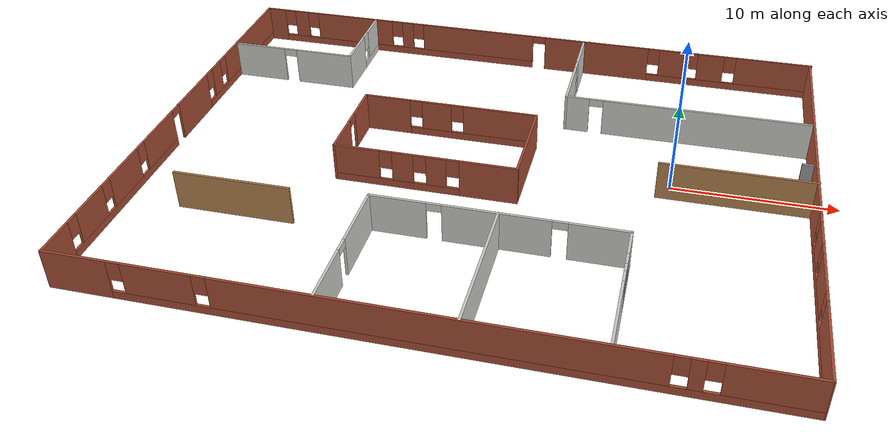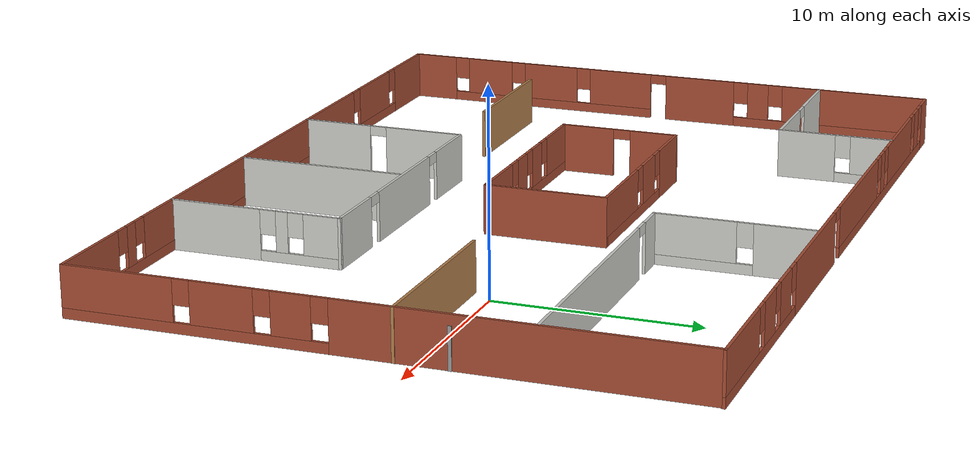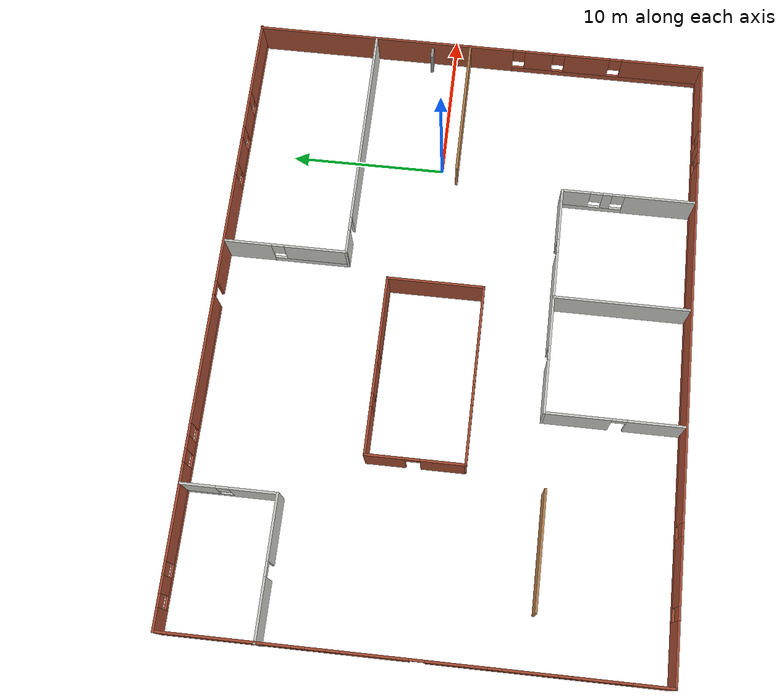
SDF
<sdf version="1.6">
 <model name="Office2">
  <pose>-11.6266 -1.74216 0 0 -0 0</pose>
  <link name="Door_3">
   <collision name="Door_3_Collision">
    <geometry><box><size>0.9 0.17 2</size></box></geometry>
    <pose>0 0 1 0 -0 0</pose>
   </collision>
   <visual name="Door_3_Visual">
    <pose>0 0 1 0 -0 0</pose>
    <geometry><box><size>0.9 0.17 2</size></box></geometry>
    <material>
     <script><uri>file://media/materials/scripts/gazebo.material</uri><name>Gazebo/Grey</name></script>
    </material>
   </visual>
   <pose>19.6108 3.24042 0 0 -0 0</pose>
  </link>
  <link name="Wall_0">
   <pose>-19.9784 0.000161 0 0 -0 1.5708</pose>
   <visual name="Wall_0_Visual_0">
    <pose>-13.757 0 1.25 0 -0 0</pose>
    <geometry><box><size>2.48598 0.15 2.5</size></box></geometry>
    <material>
     <script><uri>file://media/materials/scripts/gazebo.material</uri><name>Gazebo/Bricks</name></script>
     <ambient>1 1 1 1</ambient>
    </material>
    <meta><layer>0</layer></meta>
   </visual>
   <collision name="Wall_0_Collision_0">
    <geometry><box><size>2.48598 0.15 2.5</size></box></geometry>
    <pose>-13.757 0 1.25 0 -0 0</pose>
   </collision>
   <visual name="Wall_0_Visual_1">
    <pose>2.2039 0 1.25 0 -0 0</pose>
    <geometry><box><size>3.96148 0.15 2.5</size></box></geometry>
    <material>
     <script><uri>file://media/materials/scripts/gazebo.material</uri><name>Gazebo/Bricks</name></script>
     <ambient>1 1 1 1</ambient>
    </material>
    <meta><layer>0</layer></meta>
   </visual>
   <collision name="Wall_0_Collision_1">
    <geometry><box><size>3.96148 0.15 2.5</size></box></geometry>
    <pose>2.2039 0 1.25 0 -0 0</pose>
   </collision>
   <visual name="Wall_0_Visual_2">
    <pose>-6.59543 0 0.25 0 -0 0</pose>
    <geometry><box><size>11.8372 0.15 0.5</size></box></geometry>
    <material>
     <script><uri>file://media/materials/scripts/gazebo.material</uri><name>Gazebo/Bricks</name></script>
     <ambient>1 1 1 1</ambient>
    </material>
    <meta><layer>0</layer></meta>
   </visual>
   <collision name="Wall_0_Collision_2">
    <geometry><box><size>11.8372 0.15 0.5</size></box></geometry>
    <pose>-6.59543 0 0.25 0 -0 0</pose>
   </collision>
   <visual name="Wall_0_Visual_3">
    <pose>9.59232 0 0.25 0 -0 0</pose>
    <geometry><box><size>10.8154 0.15 0.5</size></box></geometry>
    <material>
     <script><uri>file://media/materials/scripts/gazebo.material</uri><name>Gazebo/Bricks</name></script>
     <ambient>1 1 1 1</ambient>
    </material>
    <meta><layer>0</layer></meta>
   </visual>
   <collision name="Wall_0_Collision_3">
    <geometry><box><size>10.8154 0.15 0.5</size></box></geometry>
    <pose>9.59232 0 0.25 0 -0 0</pose>
   </collision>
   <visual name="Wall_0_Visual_4">
    <pose>-10.3805 0 1.5 0 -0 0</pose>
    <geometry><box><size>2.6671 0.15 2</size></box></geometry>
    <material>
     <script><uri>file://media/materials/scripts/gazebo.material</uri><name>Gazebo/Bricks</name></script>
     <ambient>1 1 1 1</ambient>
    </material>
    <meta><layer>0</layer></meta>
   </visual>
   <collision name="Wall_0_Collision_4">
    <geometry><box><size>2.6671 0.15 2</size></box></geometry>
    <pose>-10.3805 0 1.5 0 -0 0</pose>
   </collision>
   <visual name="Wall_0_Visual_5">
    <pose>-6.66573 0 1.5 0 -0 0</pose>
    <geometry><box><size>3.1624 0.15 2</size></box></geometry>
    <material>
     <script><uri>file://media/materials/scripts/gazebo.material</uri><name>Gazebo/Bricks</name></script>
     <ambient>1 1 1 1</ambient>
    </material>
    <meta><layer>0</layer></meta>
   </visual>
   <collision name="Wall_0_Collision_5">
    <geometry><box><size>3.1624 0.15 2</size></box></geometry>
    <pose>-6.66573 0 1.5 0 -0 0</pose>
   </collision>
   <visual name="Wall_0_Visual_6">
    <pose>-2.48068 0 1.5 0 -0 0</pose>
    <geometry><box><size>3.6077 0.15 2</size></box></geometry>
    <material>
     <script><uri>file://media/materials/scripts/gazebo.material</uri><name>Gazebo/Bricks</name></script>
     <ambient>1 1 1 1</ambient>
    </material>
    <meta><layer>0</layer></meta>
   </visual>
   <collision name="Wall_0_Collision_6">
    <geometry><box><size>3.6077 0.15 2</size></box></geometry>
    <pose>-2.48068 0 1.5 0 -0 0</pose>
   </collision>
   <visual name="Wall_0_Visual_7">
    <pose>-2.48068 0 1.5 0 -0 0</pose>
    <geometry><box><size>3.6077 0.15 2</size></box></geometry>
    <material>
     <script><uri>file://media/materials/scripts/gazebo.material</uri><name>Gazebo/Bricks</name></script>
     <ambient>1 1 1 1</ambient>
    </material>
    <meta><layer>0</layer></meta>
   </visual>
   <collision name="Wall_0_Collision_7">
    <geometry><box><size>3.6077 0.15 2</size></box></geometry>
    <pose>-2.48068 0 1.5 0 -0 0</pose>
   </collision>
   <visual name="Wall_0_Visual_8">
    <pose>5.57524 0 1.5 0 -0 0</pose>
    <geometry><box><size>1.1812 0.15 2</size></box></geometry>
    <material>
     <script><uri>file://media/materials/scripts/gazebo.material</uri><name>Gazebo/Bricks</name></script>
     <ambient>1 1 1 1</ambient>
    </material>
    <meta><layer>0</layer></meta>
   </visual>
   <collision name="Wall_0_Collision_8">
    <geometry><box><size>1.1812 0.15 2</size></box></geometry>
    <pose>5.57524 0 1.5 0 -0 0</pose>
   </collision>
   <visual name="Wall_0_Visual_9">
    <pose>10.9829 0 1.5 0 -0 0</pose>
    <geometry><box><size>8.03416 0.15 2</size></box></geometry>
    <material>
     <script><uri>file://media/materials/scripts/gazebo.material</uri><name>Gazebo/Bricks</name></script>
     <ambient>1 1 1 1</ambient>
    </material>
    <meta><layer>0</layer></meta>
   </visual>
   <collision name="Wall_0_Collision_9">
    <geometry><box><size>8.03416 0.15 2</size></box></geometry>
    <pose>10.9829 0 1.5 0 -0 0</pose>
   </collision>
   <visual name="Wall_0_Visual_10">
    <pose>-12.114 0 1.9 0 -0 0</pose>
    <geometry><box><size>0.8 0.15 1.2</size></box></geometry>
    <material>
     <script><uri>file://media/materials/scripts/gazebo.material</uri><name>Gazebo/Bricks</name></script>
     <ambient>1 1 1 1</ambient>
    </material>
    <meta><layer>0</layer></meta>
   </visual>
   <collision name="Wall_0_Collision_10">
    <geometry><box><size>0.8 0.15 1.2</size></box></geometry>
    <pose>-12.114 0 1.9 0 -0 0</pose>
   </collision>
   <visual name="Wall_0_Visual_11">
    <pose>4.58464 0 1.9 0 -0 0</pose>
    <geometry><box><size>0.8 0.15 1.2</size></box></geometry>
    <material>
     <script><uri>file://media/materials/scripts/gazebo.material</uri><name>Gazebo/Bricks</name></script>
     <ambient>1 1 1 1</ambient>
    </material>
    <meta><layer>0</layer></meta>
   </visual>
   <collision name="Wall_0_Collision_11">
    <geometry><box><size>0.8 0.15 1.2</size></box></geometry>
    <pose>4.58464 0 1.9 0 -0 0</pose>
   </collision>
   <visual name="Wall_0_Visual_12">
    <pose>-8.64693 0 1.9 0 -0 0</pose>
    <geometry><box><size>0.8 0.15 1.2</size></box></geometry>
    <material>
     <script><uri>file://media/materials/scripts/gazebo.material</uri><name>Gazebo/Bricks</name></script>
     <ambient>1 1 1 1</ambient>
    </material>
    <meta><layer>0</layer></meta>
   </visual>
   <collision name="Wall_0_Collision_12">
    <geometry><box><size>0.8 0.15 1.2</size></box></geometry>
    <pose>-8.64693 0 1.9 0 -0 0</pose>
   </collision>
   <visual name="Wall_0_Visual_13">
    <pose>-4.68453 0 1.9 0 -0 0</pose>
    <geometry><box><size>0.8 0.15 1.2</size></box></geometry>
    <material>
     <script><uri>file://media/materials/scripts/gazebo.material</uri><name>Gazebo/Bricks</name></script>
     <ambient>1 1 1 1</ambient>
    </material>
    <meta><layer>0</layer></meta>
   </visual>
   <collision name="Wall_0_Collision_13">
    <geometry><box><size>0.8 0.15 1.2</size></box></geometry>
    <pose>-4.68453 0 1.9 0 -0 0</pose>
   </collision>
   <visual name="Wall_0_Visual_14">
    <pose>6.56584 0 1.9 0 -0 0</pose>
    <geometry><box><size>0.8 0.15 1.2</size></box></geometry>
    <material>
     <script><uri>file://media/materials/scripts/gazebo.material</uri><name>Gazebo/Bricks</name></script>
     <ambient>1 1 1 1</ambient>
    </material>
    <meta><layer>0</layer></meta>
   </visual>
   <collision name="Wall_0_Collision_14">
    <geometry><box><size>0.8 0.15 1.2</size></box></geometry>
    <pose>6.56584 0 1.9 0 -0 0</pose>
   </collision>
   <visual name="Wall_0_Visual_15">
    <pose>-0.226838 0 2.25 0 -0 0</pose>
    <geometry><box><size>0.9 0.15 0.5</size></box></geometry>
    <material>
     <script><uri>file://media/materials/scripts/gazebo.material</uri><name>Gazebo/Bricks</name></script>
     <ambient>1 1 1 1</ambient>
    </material>
    <meta><layer>0</layer></meta>
   </visual>
   <collision name="Wall_0_Collision_15">
    <geometry><box><size>0.9 0.15 0.5</size></box></geometry>
    <pose>-0.226838 0 2.25 0 -0 0</pose>
   </collision>
   <visual name="Wall_0_Visual_16">
    <pose>-0.226838 0 2.25 0 -0 0</pose>
    <geometry><box><size>0.9 0.15 0.5</size></box></geometry>
    <material>
     <script><uri>file://media/materials/scripts/gazebo.material</uri><name>Gazebo/Bricks</name></script>
     <ambient>1 1 1 1</ambient>
    </material>
    <meta><layer>0</layer></meta>
   </visual>
   <collision name="Wall_0_Collision_16">
    <geometry><box><size>0.9 0.15 0.5</size></box></geometry>
    <pose>-0.226838 0 2.25 0 -0 0</pose>
   </collision>
  </link>
  <link name="Wall_11">
   <pose>-15.7131 9.0425 0 0 -0 0</pose>
   <visual name="Wall_11_Visual_0">
    <pose>-2.47517 0 1.25 0 -0 0</pose>
    <geometry><box><size>3.79967 0.15 2.5</size></box></geometry>
    <material>
     <script><uri>file://media/materials/scripts/gazebo.material</uri><name>Gazebo/CeilingTiled</name></script>
     <ambient>0.203922 0.396078 0.643137 1</ambient>
    </material>
    <meta><layer>0</layer></meta>
   </visual>
   <collision name="Wall_11_Collision_0">
    <geometry><box><size>3.79967 0.15 2.5</size></box></geometry>
    <pose>-2.47517 0 1.25 0 -0 0</pose>
   </collision>
   <visual name="Wall_11_Visual_1">
    <pose>2.34983 0 1.25 0 -0 0</pose>
    <geometry><box><size>4.05033 0.15 2.5</size></box></geometry>
    <material>
     <script><uri>file://media/materials/scripts/gazebo.material</uri><name>Gazebo/CeilingTiled</name></script>
     <ambient>0.203922 0.396078 0.643137 1</ambient>
    </material>
    <meta><layer>0</layer></meta>
   </visual>
   <collision name="Wall_11_Collision_1">
    <geometry><box><size>4.05033 0.15 2.5</size></box></geometry>
    <pose>2.34983 0 1.25 0 -0 0</pose>
   </collision>
   <visual name="Wall_11_Visual_2">
    <pose>-0.125334 0 2.25 0 -0 0</pose>
    <geometry><box><size>0.9 0.15 0.5</size></box></geometry>
    <material>
     <script><uri>file://media/materials/scripts/gazebo.material</uri><name>Gazebo/CeilingTiled</name></script>
     <ambient>0.203922 0.396078 0.643137 1</ambient>
    </material>
    <meta><layer>0</layer></meta>
   </visual>
   <collision name="Wall_11_Collision_2">
    <geometry><box><size>0.9 0.15 0.5</size></box></geometry>
    <pose>-0.125334 0 2.25 0 -0 0</pose>
   </collision>
  </link>
  <link name="Wall_15">
   <pose>-11.4131 11.9675 0 0 -0 1.5708</pose>
   <visual name="Wall_15_Visual_0">
    <pose>-1.49971 0 1.25 0 -0 0</pose>
    <geometry><box><size>3.00058 0.15 2.5</size></box></geometry>
    <material>
     <script><uri>file://media/materials/scripts/gazebo.material</uri><name>Gazebo/CeilingTiled</name></script>
     <ambient>1 1 1 1</ambient>
    </material>
    <meta><layer>0</layer></meta>
   </visual>
   <collision name="Wall_15_Collision_0">
    <geometry><box><size>3.00058 0.15 2.5</size></box></geometry>
    <pose>-1.49971 0 1.25 0 -0 0</pose>
   </collision>
   <visual name="Wall_15_Visual_1">
    <pose>1.50029 0 0.25 0 -0 0</pose>
    <geometry><box><size>2.99942 0.15 0.5</size></box></geometry>
    <material>
     <script><uri>file://media/materials/scripts/gazebo.material</uri><name>Gazebo/CeilingTiled</name></script>
     <ambient>1 1 1 1</ambient>
    </material>
    <meta><layer>0</layer></meta>
   </visual>
   <collision name="Wall_15_Collision_1">
    <geometry><box><size>2.99942 0.15 0.5</size></box></geometry>
    <pose>1.50029 0 0.25 0 -0 0</pose>
   </collision>
   <visual name="Wall_15_Visual_2">
    <pose>1.90029 0 1.5 0 -0 0</pose>
    <geometry><box><size>2.19942 0.15 2</size></box></geometry>
    <material>
     <script><uri>file://media/materials/scripts/gazebo.material</uri><name>Gazebo/CeilingTiled</name></script>
     <ambient>1 1 1 1</ambient>
    </material>
    <meta><layer>0</layer></meta>
   </visual>
   <collision name="Wall_15_Collision_2">
    <geometry><box><size>2.19942 0.15 2</size></box></geometry>
    <pose>1.90029 0 1.5 0 -0 0</pose>
   </collision>
   <visual name="Wall_15_Visual_3">
    <pose>0.400581 0 1.9 0 -0 0</pose>
    <geometry><box><size>0.8 0.15 1.2</size></box></geometry>
    <material>
     <script><uri>file://media/materials/scripts/gazebo.material</uri><name>Gazebo/CeilingTiled</name></script>
     <ambient>1 1 1 1</ambient>
    </material>
    <meta><layer>0</layer></meta>
   </visual>
   <collision name="Wall_15_Collision_3">
    <geometry><box><size>0.8 0.15 1.2</size></box></geometry>
    <pose>0.400581 0 1.9 0 -0 0</pose>
   </collision>
  </link>
  <link name="Wall_17">
   <pose>4.25654 10.9903 0 0 -0 -1.5708</pose>
   <visual name="Wall_17_Visual_0">
    <pose>-2.42895 0 1.25 0 -0 0</pose>
    <geometry><box><size>3.1421 0.15 2.5</size></box></geometry>
    <material>
     <script><uri>file://media/materials/scripts/gazebo.material</uri><name>Gazebo/CeilingTiled</name></script>
     <ambient>1 1 1 1</ambient>
    </material>
    <meta><layer>0</layer></meta>
   </visual>
   <collision name="Wall_17_Collision_0">
    <geometry><box><size>3.1421 0.15 2.5</size></box></geometry>
    <pose>-2.42895 0 1.25 0 -0 0</pose>
   </collision>
   <visual name="Wall_17_Visual_1">
    <pose>1.57105 0 0.25 0 -0 0</pose>
    <geometry><box><size>4.8579 0.15 0.5</size></box></geometry>
    <material>
     <script><uri>file://media/materials/scripts/gazebo.material</uri><name>Gazebo/CeilingTiled</name></script>
     <ambient>1 1 1 1</ambient>
    </material>
    <meta><layer>0</layer></meta>
   </visual>
   <collision name="Wall_17_Collision_1">
    <geometry><box><size>4.8579 0.15 0.5</size></box></geometry>
    <pose>1.57105 0 0.25 0 -0 0</pose>
   </collision>
   <visual name="Wall_17_Visual_2">
    <pose>1.97105 0 1.5 0 -0 0</pose>
    <geometry><box><size>4.0579 0.15 2</size></box></geometry>
    <material>
     <script><uri>file://media/materials/scripts/gazebo.material</uri><name>Gazebo/CeilingTiled</name></script>
     <ambient>1 1 1 1</ambient>
    </material>
    <meta><layer>0</layer></meta>
   </visual>
   <collision name="Wall_17_Collision_2">
    <geometry><box><size>4.0579 0.15 2</size></box></geometry>
    <pose>1.97105 0 1.5 0 -0 0</pose>
   </collision>
   <visual name="Wall_17_Visual_3">
    <pose>-0.457904 0 1.9 0 -0 0</pose>
    <geometry><box><size>0.8 0.15 1.2</size></box></geometry>
    <material>
     <script><uri>file://media/materials/scripts/gazebo.material</uri><name>Gazebo/CeilingTiled</name></script>
     <ambient>1 1 1 1</ambient>
    </material>
    <meta><layer>0</layer></meta>
   </visual>
   <collision name="Wall_17_Collision_3">
    <geometry><box><size>0.8 0.15 1.2</size></box></geometry>
    <pose>-0.457904 0 1.9 0 -0 0</pose>
   </collision>
  </link>
  <link name="Wall_18">
   <pose>12.0565 7.06533 0 0 -0 0</pose>
   <visual name="Wall_18_Visual_0">
    <pose>-7.0719 0 1.25 0 -0 0</pose>
    <geometry><box><size>1.6062 0.15 2.5</size></box></geometry>
    <material>
     <script><uri>file://media/materials/scripts/gazebo.material</uri><name>Gazebo/CeilingTiled</name></script>
     <ambient>0.203922 0.396078 0.643137 1</ambient>
    </material>
    <meta><layer>0</layer></meta>
   </visual>
   <collision name="Wall_18_Collision_0">
    <geometry><box><size>1.6062 0.15 2.5</size></box></geometry>
    <pose>-7.0719 0 1.25 0 -0 0</pose>
   </collision>
   <visual name="Wall_18_Visual_1">
    <pose>1.2531 0 1.25 0 -0 0</pose>
    <geometry><box><size>13.2438 0.15 2.5</size></box></geometry>
    <material>
     <script><uri>file://media/materials/scripts/gazebo.material</uri><name>Gazebo/CeilingTiled</name></script>
     <ambient>0.203922 0.396078 0.643137 1</ambient>
    </material>
    <meta><layer>0</layer></meta>
   </visual>
   <collision name="Wall_18_Collision_1">
    <geometry><box><size>13.2438 0.15 2.5</size></box></geometry>
    <pose>1.2531 0 1.25 0 -0 0</pose>
   </collision>
   <visual name="Wall_18_Visual_2">
    <pose>-5.8188 0 2.25 0 -0 0</pose>
    <geometry><box><size>0.9 0.15 0.5</size></box></geometry>
    <material>
     <script><uri>file://media/materials/scripts/gazebo.material</uri><name>Gazebo/CeilingTiled</name></script>
     <ambient>0.203922 0.396078 0.643137 1</ambient>
    </material>
    <meta><layer>0</layer></meta>
   </visual>
   <collision name="Wall_18_Collision_2">
    <geometry><box><size>0.9 0.15 0.5</size></box></geometry>
    <pose>-5.8188 0 2.25 0 -0 0</pose>
   </collision>
  </link>
  <link name="Wall_20">
   <pose>9.98786 -10.5734 0 0 -0 1.5708</pose>
   <visual name="Wall_20_Visual_0">
    <pose>-2.061 0 1.25 0 -0 0</pose>
    <geometry><box><size>4.62799 0.15 2.5</size></box></geometry>
    <material>
     <script><uri>file://media/materials/scripts/gazebo.material</uri><name>Gazebo/CeilingTiled</name></script>
     <ambient>1 1 1 1</ambient>
    </material>
    <meta><layer>0</layer></meta>
   </visual>
   <collision name="Wall_20_Collision_0">
    <geometry><box><size>4.62799 0.15 2.5</size></box></geometry>
    <pose>-2.061 0 1.25 0 -0 0</pose>
   </collision>
   <visual name="Wall_20_Visual_1">
    <pose>2.314 0 0.25 0 -0 0</pose>
    <geometry><box><size>4.12201 0.15 0.5</size></box></geometry>
    <material>
     <script><uri>file://media/materials/scripts/gazebo.material</uri><name>Gazebo/CeilingTiled</name></script>
     <ambient>1 1 1 1</ambient>
    </material>
    <meta><layer>0</layer></meta>
   </visual>
   <collision name="Wall_20_Collision_1">
    <geometry><box><size>4.12201 0.15 0.5</size></box></geometry>
    <pose>2.314 0 0.25 0 -0 0</pose>
   </collision>
   <visual name="Wall_20_Visual_2">
    <pose>1.36057 0 1.5 0 -0 0</pose>
    <geometry><box><size>0.615141 0.15 2</size></box></geometry>
    <material>
     <script><uri>file://media/materials/scripts/gazebo.material</uri><name>Gazebo/CeilingTiled</name></script>
     <ambient>1 1 1 1</ambient>
    </material>
    <meta><layer>0</layer></meta>
   </visual>
   <collision name="Wall_20_Collision_2">
    <geometry><box><size>0.615141 0.15 2</size></box></geometry>
    <pose>1.36057 0 1.5 0 -0 0</pose>
   </collision>
   <visual name="Wall_20_Visual_3">
    <pose>3.42157 0 1.5 0 -0 0</pose>
    <geometry><box><size>1.90687 0.15 2</size></box></geometry>
    <material>
     <script><uri>file://media/materials/scripts/gazebo.material</uri><name>Gazebo/CeilingTiled</name></script>
     <ambient>1 1 1 1</ambient>
    </material>
    <meta><layer>0</layer></meta>
   </visual>
   <collision name="Wall_20_Collision_3">
    <geometry><box><size>1.90687 0.15 2</size></box></geometry>
    <pose>3.42157 0 1.5 0 -0 0</pose>
   </collision>
   <visual name="Wall_20_Visual_4">
    <pose>0.652994 0 1.9 0 -0 0</pose>
    <geometry><box><size>0.8 0.15 1.2</size></box></geometry>
    <material>
     <script><uri>file://media/materials/scripts/gazebo.material</uri><name>Gazebo/CeilingTiled</name></script>
     <ambient>1 1 1 1</ambient>
    </material>
    <meta><layer>0</layer></meta>
   </visual>
   <collision name="Wall_20_Collision_4">
    <geometry><box><size>0.8 0.15 1.2</size></box></geometry>
    <pose>0.652994 0 1.9 0 -0 0</pose>
   </collision>
   <visual name="Wall_20_Visual_5">
    <pose>2.06813 0 1.9 0 -0 0</pose>
    <geometry><box><size>0.8 0.15 1.2</size></box></geometry>
    <material>
     <script><uri>file://media/materials/scripts/gazebo.material</uri><name>Gazebo/CeilingTiled</name></script>
     <ambient>1 1 1 1</ambient>
    </material>
    <meta><layer>0</layer></meta>
   </visual>
   <collision name="Wall_20_Collision_5">
    <geometry><box><size>0.8 0.15 1.2</size></box></geometry>
    <pose>2.06813 0 1.9 0 -0 0</pose>
   </collision>
  </link>
  <link name="Wall_21">
   <pose>2.56286 -6.27339 0 0 -0 3.14159</pose>
   <visual name="Wall_21_Visual_0">
    <pose>-5.74168 0 1.25 0 -0 0</pose>
    <geometry><box><size>3.51664 0.15 2.5</size></box></geometry>
    <material>
     <script><uri>file://media/materials/scripts/gazebo.material</uri><name>Gazebo/CeilingTiled</name></script>
     <ambient>0.203922 0.396078 0.643137 1</ambient>
    </material>
    <meta><layer>0</layer></meta>
   </visual>
   <collision name="Wall_21_Collision_0">
    <geometry><box><size>3.51664 0.15 2.5</size></box></geometry>
    <pose>-5.74168 0 1.25 0 -0 0</pose>
   </collision>
   <visual name="Wall_21_Visual_1">
    <pose>0.03987 0 1.25 0 -0 0</pose>
    <geometry><box><size>6.24646 0.15 2.5</size></box></geometry>
    <material>
     <script><uri>file://media/materials/scripts/gazebo.material</uri><name>Gazebo/CeilingTiled</name></script>
     <ambient>0.203922 0.396078 0.643137 1</ambient>
    </material>
    <meta><layer>0</layer></meta>
   </visual>
   <collision name="Wall_21_Collision_1">
    <geometry><box><size>6.24646 0.15 2.5</size></box></geometry>
    <pose>0.03987 0 1.25 0 -0 0</pose>
   </collision>
   <visual name="Wall_21_Visual_2">
    <pose>5.78155 0 1.25 0 -0 0</pose>
    <geometry><box><size>3.4369 0.15 2.5</size></box></geometry>
    <material>
     <script><uri>file://media/materials/scripts/gazebo.material</uri><name>Gazebo/CeilingTiled</name></script>
     <ambient>0.203922 0.396078 0.643137 1</ambient>
    </material>
    <meta><layer>0</layer></meta>
   </visual>
   <collision name="Wall_21_Collision_2">
    <geometry><box><size>3.4369 0.15 2.5</size></box></geometry>
    <pose>5.78155 0 1.25 0 -0 0</pose>
   </collision>
   <visual name="Wall_21_Visual_3">
    <pose>-3.53336 0 2.25 0 -0 0</pose>
    <geometry><box><size>0.9 0.15 0.5</size></box></geometry>
    <material>
     <script><uri>file://media/materials/scripts/gazebo.material</uri><name>Gazebo/CeilingTiled</name></script>
     <ambient>0.203922 0.396078 0.643137 1</ambient>
    </material>
    <meta><layer>0</layer></meta>
   </visual>
   <collision name="Wall_21_Collision_3">
    <geometry><box><size>0.9 0.15 0.5</size></box></geometry>
    <pose>-3.53336 0 2.25 0 -0 0</pose>
   </collision>
   <visual name="Wall_21_Visual_4">
    <pose>3.6131 0 2.25 0 -0 0</pose>
    <geometry><box><size>0.9 0.15 0.5</size></box></geometry>
    <material>
     <script><uri>file://media/materials/scripts/gazebo.material</uri><name>Gazebo/CeilingTiled</name></script>
     <ambient>0.203922 0.396078 0.643137 1</ambient>
    </material>
    <meta><layer>0</layer></meta>
   </visual>
   <collision name="Wall_21_Collision_4">
    <geometry><box><size>0.9 0.15 0.5</size></box></geometry>
    <pose>3.6131 0 2.25 0 -0 0</pose>
   </collision>
  </link>
  <link name="Wall_22">
   <pose>-4.86214 -10.5734 0 0 -0 -1.5708</pose>
   <visual name="Wall_22_Visual_0">
    <pose>-2.27908 0 1.25 0 -0 0</pose>
    <geometry><box><size>4.19185 0.15 2.5</size></box></geometry>
    <material>
     <script><uri>file://media/materials/scripts/gazebo.material</uri><name>Gazebo/CeilingTiled</name></script>
     <ambient>1 1 1 1</ambient>
    </material>
    <meta><layer>0</layer></meta>
   </visual>
   <collision name="Wall_22_Collision_0">
    <geometry><box><size>4.19185 0.15 2.5</size></box></geometry>
    <pose>-2.27908 0 1.25 0 -0 0</pose>
   </collision>
   <visual name="Wall_22_Visual_1">
    <pose>2.54592 0 1.25 0 -0 0</pose>
    <geometry><box><size>3.65815 0.15 2.5</size></box></geometry>
    <material>
     <script><uri>file://media/materials/scripts/gazebo.material</uri><name>Gazebo/CeilingTiled</name></script>
     <ambient>1 1 1 1</ambient>
    </material>
    <meta><layer>0</layer></meta>
   </visual>
   <collision name="Wall_22_Collision_1">
    <geometry><box><size>3.65815 0.15 2.5</size></box></geometry>
    <pose>2.54592 0 1.25 0 -0 0</pose>
   </collision>
   <visual name="Wall_22_Visual_2">
    <pose>0.266848 0 2.25 0 -0 0</pose>
    <geometry><box><size>0.9 0.15 0.5</size></box></geometry>
    <material>
     <script><uri>file://media/materials/scripts/gazebo.material</uri><name>Gazebo/CeilingTiled</name></script>
     <ambient>1 1 1 1</ambient>
    </material>
    <meta><layer>0</layer></meta>
   </visual>
   <collision name="Wall_22_Collision_2">
    <geometry><box><size>0.9 0.15 0.5</size></box></geometry>
    <pose>0.266848 0 2.25 0 -0 0</pose>
   </collision>
  </link>
  <link name="Wall_24">
   <collision name="Wall_24_Collision">
    <geometry><box><size>8.75 0.15 2.5</size></box></geometry>
    <pose>0 0 1.25 0 -0 0</pose>
   </collision>
   <visual name="Wall_24_Visual">
    <pose>0 0 1.25 0 -0 0</pose>
    <geometry><box><size>8.75 0.15 2.5</size></box></geometry>
    <material>
     <script><uri>file://media/materials/scripts/gazebo.material</uri><name>Gazebo/CeilingTiled</name></script>
     <ambient>1 1 1 1</ambient>
    </material>
    <meta><layer>0</layer></meta>
   </visual>
   <pose>2.62913 -10.6118 0 0 -0 -1.5708</pose>
  </link>
  <link name="Wall_26">
   <pose>-2.87549 4.23102 0 0 -0 0</pose>
   <visual name="Wall_26_Visual_0">
    <pose>-4.21433 0 1.25 0 -0 0</pose>
    <geometry><box><size>3.07134 0.15 2.5</size></box></geometry>
    <material>
     <script><uri>file://media/materials/scripts/gazebo.material</uri><name>Gazebo/Bricks</name></script>
     <ambient>1 1 1 1</ambient>
    </material>
    <meta><layer>0</layer></meta>
   </visual>
   <collision name="Wall_26_Collision_0">
    <geometry><box><size>3.07134 0.15 2.5</size></box></geometry>
    <pose>-4.21433 0 1.25 0 -0 0</pose>
   </collision>
   <visual name="Wall_26_Visual_1">
    <pose>1.53567 0 0.25 0 -0 0</pose>
    <geometry><box><size>8.42866 0.15 0.5</size></box></geometry>
    <material>
     <script><uri>file://media/materials/scripts/gazebo.material</uri><name>Gazebo/Bricks</name></script>
     <ambient>1 1 1 1</ambient>
    </material>
    <meta><layer>0</layer></meta>
   </visual>
   <collision name="Wall_26_Collision_1">
    <geometry><box><size>8.42866 0.15 0.5</size></box></geometry>
    <pose>1.53567 0 0.25 0 -0 0</pose>
   </collision>
   <visual name="Wall_26_Visual_2">
    <pose>-0.898898 0 1.5 0 -0 0</pose>
    <geometry><box><size>1.95952 0.15 2</size></box></geometry>
    <material>
     <script><uri>file://media/materials/scripts/gazebo.material</uri><name>Gazebo/Bricks</name></script>
     <ambient>1 1 1 1</ambient>
    </material>
    <meta><layer>0</layer></meta>
   </visual>
   <collision name="Wall_26_Collision_2">
    <geometry><box><size>1.95952 0.15 2</size></box></geometry>
    <pose>-0.898898 0 1.5 0 -0 0</pose>
   </collision>
   <visual name="Wall_26_Visual_3">
    <pose>3.31543 0 1.5 0 -0 0</pose>
    <geometry><box><size>4.86913 0.15 2</size></box></geometry>
    <material>
     <script><uri>file://media/materials/scripts/gazebo.material</uri><name>Gazebo/Bricks</name></script>
     <ambient>1 1 1 1</ambient>
    </material>
    <meta><layer>0</layer></meta>
   </visual>
   <collision name="Wall_26_Collision_3">
    <geometry><box><size>4.86913 0.15 2</size></box></geometry>
    <pose>3.31543 0 1.5 0 -0 0</pose>
   </collision>
   <visual name="Wall_26_Visual_4">
    <pose>-2.27866 0 1.9 0 -0 0</pose>
    <geometry><box><size>0.8 0.15 1.2</size></box></geometry>
    <material>
     <script><uri>file://media/materials/scripts/gazebo.material</uri><name>Gazebo/Bricks</name></script>
     <ambient>1 1 1 1</ambient>
    </material>
    <meta><layer>0</layer></meta>
   </visual>
   <collision name="Wall_26_Collision_4">
    <geometry><box><size>0.8 0.15 1.2</size></box></geometry>
    <pose>-2.27866 0 1.9 0 -0 0</pose>
   </collision>
   <visual name="Wall_26_Visual_5">
    <pose>0.480865 0 1.9 0 -0 0</pose>
    <geometry><box><size>0.8 0.15 1.2</size></box></geometry>
    <material>
     <script><uri>file://media/materials/scripts/gazebo.material</uri><name>Gazebo/Bricks</name></script>
     <ambient>1 1 1 1</ambient>
    </material>
    <meta><layer>0</layer></meta>
   </visual>
   <collision name="Wall_26_Collision_5">
    <geometry><box><size>0.8 0.15 1.2</size></box></geometry>
    <pose>0.480865 0 1.9 0 -0 0</pose>
   </collision>
  </link>
  <link name="Wall_27">
   <collision name="Wall_27_Collision">
    <geometry><box><size>6.25 0.15 2.5</size></box></geometry>
    <pose>0 0 1.25 0 -0 0</pose>
   </collision>
   <visual name="Wall_27_Visual">
    <pose>0 0 1.25 0 -0 0</pose>
    <geometry><box><size>6.25 0.15 2.5</size></box></geometry>
    <material>
     <script><uri>file://media/materials/scripts/gazebo.material</uri><name>Gazebo/Bricks</name></script>
     <ambient>1 1 1 1</ambient>
    </material>
    <meta><layer>0</layer></meta>
   </visual>
   <pose>2.79951 1.18102 0 0 -0 -1.5708</pose>
  </link>
  <link name="Wall_28">
   <pose>-2.87549 -1.86898 0 0 -0 3.14159</pose>
   <visual name="Wall_28_Visual_0">
    <pose>-3.95225 0 1.25 0 -0 0</pose>
    <geometry><box><size>3.59551 0.15 2.5</size></box></geometry>
    <material>
     <script><uri>file://media/materials/scripts/gazebo.material</uri><name>Gazebo/Bricks</name></script>
     <ambient>1 1 1 1</ambient>
    </material>
    <meta><layer>0</layer></meta>
   </visual>
   <collision name="Wall_28_Collision_0">
    <geometry><box><size>3.59551 0.15 2.5</size></box></geometry>
    <pose>-3.95225 0 1.25 0 -0 0</pose>
   </collision>
   <visual name="Wall_28_Visual_1">
    <pose>1.79775 0 0.25 0 -0 0</pose>
    <geometry><box><size>7.90449 0.15 0.5</size></box></geometry>
    <material>
     <script><uri>file://media/materials/scripts/gazebo.material</uri><name>Gazebo/Bricks</name></script>
     <ambient>1 1 1 1</ambient>
    </material>
    <meta><layer>0</layer></meta>
   </visual>
   <collision name="Wall_28_Collision_1">
    <geometry><box><size>7.90449 0.15 0.5</size></box></geometry>
    <pose>1.79775 0 0.25 0 -0 0</pose>
   </collision>
   <visual name="Wall_28_Visual_2">
    <pose>-0.728514 0 1.5 0 -0 0</pose>
    <geometry><box><size>1.25195 0.15 2</size></box></geometry>
    <material>
     <script><uri>file://media/materials/scripts/gazebo.material</uri><name>Gazebo/Bricks</name></script>
     <ambient>1 1 1 1</ambient>
    </material>
    <meta><layer>0</layer></meta>
   </visual>
   <collision name="Wall_28_Collision_2">
    <geometry><box><size>1.25195 0.15 2</size></box></geometry>
    <pose>-0.728514 0 1.5 0 -0 0</pose>
   </collision>
   <visual name="Wall_28_Visual_3">
    <pose>1.35882 0 1.5 0 -0 0</pose>
    <geometry><box><size>1.32271 0.15 2</size></box></geometry>
    <material>
     <script><uri>file://media/materials/scripts/gazebo.material</uri><name>Gazebo/Bricks</name></script>
     <ambient>1 1 1 1</ambient>
    </material>
    <meta><layer>0</layer></meta>
   </visual>
   <collision name="Wall_28_Collision_3">
    <geometry><box><size>1.32271 0.15 2</size></box></geometry>
    <pose>1.35882 0 1.5 0 -0 0</pose>
   </collision>
   <visual name="Wall_28_Visual_4">
    <pose>4.28509 0 1.5 0 -0 0</pose>
    <geometry><box><size>2.92983 0.15 2</size></box></geometry>
    <material>
     <script><uri>file://media/materials/scripts/gazebo.material</uri><name>Gazebo/Bricks</name></script>
     <ambient>1 1 1 1</ambient>
    </material>
    <meta><layer>0</layer></meta>
   </visual>
   <collision name="Wall_28_Collision_4">
    <geometry><box><size>2.92983 0.15 2</size></box></geometry>
    <pose>4.28509 0 1.5 0 -0 0</pose>
   </collision>
   <visual name="Wall_28_Visual_5">
    <pose>-1.75449 0 1.9 0 -0 0</pose>
    <geometry><box><size>0.8 0.15 1.2</size></box></geometry>
    <material>
     <script><uri>file://media/materials/scripts/gazebo.material</uri><name>Gazebo/Bricks</name></script>
     <ambient>1 1 1 1</ambient>
    </material>
    <meta><layer>0</layer></meta>
   </visual>
   <collision name="Wall_28_Collision_5">
    <geometry><box><size>0.8 0.15 1.2</size></box></geometry>
    <pose>-1.75449 0 1.9 0 -0 0</pose>
   </collision>
   <visual name="Wall_28_Visual_6">
    <pose>0.297463 0 1.9 0 -0 0</pose>
    <geometry><box><size>0.8 0.15 1.2</size></box></geometry>
    <material>
     <script><uri>file://media/materials/scripts/gazebo.material</uri><name>Gazebo/Bricks</name></script>
     <ambient>1 1 1 1</ambient>
    </material>
    <meta><layer>0</layer></meta>
   </visual>
   <collision name="Wall_28_Collision_6">
    <geometry><box><size>0.8 0.15 1.2</size></box></geometry>
    <pose>0.297463 0 1.9 0 -0 0</pose>
   </collision>
   <visual name="Wall_28_Visual_7">
    <pose>2.42017 0 1.9 0 -0 0</pose>
    <geometry><box><size>0.8 0.15 1.2</size></box></geometry>
    <material>
     <script><uri>file://media/materials/scripts/gazebo.material</uri><name>Gazebo/Bricks</name></script>
     <ambient>1 1 1 1</ambient>
    </material>
    <meta><layer>0</layer></meta>
   </visual>
   <collision name="Wall_28_Collision_7">
    <geometry><box><size>0.8 0.15 1.2</size></box></geometry>
    <pose>2.42017 0 1.9 0 -0 0</pose>
   </collision>
  </link>
  <link name="Wall_29">
   <pose>-8.55049 1.18102 0 0 -0 1.5708</pose>
   <visual name="Wall_29_Visual_0">
    <pose>-1.71302 0 1.25 0 -0 0</pose>
    <geometry><box><size>2.82396 0.15 2.5</size></box></geometry>
    <material>
     <script><uri>file://media/materials/scripts/gazebo.material</uri><name>Gazebo/Bricks</name></script>
     <ambient>1 1 1 1</ambient>
    </material>
    <meta><layer>0</layer></meta>
   </visual>
   <collision name="Wall_29_Collision_0">
    <geometry><box><size>2.82396 0.15 2.5</size></box></geometry>
    <pose>-1.71302 0 1.25 0 -0 0</pose>
   </collision>
   <visual name="Wall_29_Visual_1">
    <pose>1.86198 0 1.25 0 -0 0</pose>
    <geometry><box><size>2.52604 0.15 2.5</size></box></geometry>
    <material>
     <script><uri>file://media/materials/scripts/gazebo.material</uri><name>Gazebo/Bricks</name></script>
     <ambient>1 1 1 1</ambient>
    </material>
    <meta><layer>0</layer></meta>
   </visual>
   <collision name="Wall_29_Collision_1">
    <geometry><box><size>2.52604 0.15 2.5</size></box></geometry>
    <pose>1.86198 0 1.25 0 -0 0</pose>
   </collision>
   <visual name="Wall_29_Visual_2">
    <pose>0.148961 0 2.25 0 -0 0</pose>
    <geometry><box><size>0.9 0.15 0.5</size></box></geometry>
    <material>
     <script><uri>file://media/materials/scripts/gazebo.material</uri><name>Gazebo/Bricks</name></script>
     <ambient>1 1 1 1</ambient>
    </material>
    <meta><layer>0</layer></meta>
   </visual>
   <collision name="Wall_29_Collision_2">
    <geometry><box><size>0.9 0.15 0.5</size></box></geometry>
    <pose>0.148961 0 2.25 0 -0 0</pose>
   </collision>
  </link>
  <link name="Wall_31">
   <collision name="Wall_31_Collision">
    <geometry><box><size>9.25 0.15 2.5</size></box></geometry>
    <pose>0 0 1.25 0 -0 0</pose>
   </collision>
   <visual name="Wall_31_Visual">
    <pose>0 0 1.25 0 -0 0</pose>
    <geometry><box><size>9.25 0.15 2.5</size></box></geometry>
    <material>
     <script><uri>file://media/materials/scripts/gazebo.material</uri><name>Gazebo/Wood</name></script>
     <ambient>1 1 1 1</ambient>
    </material>
    <meta><layer>0</layer></meta>
   </visual>
   <pose>15.4146 0.693165 0 0 -0 3.14159</pose>
  </link>
  <link name="Wall_33">
   <collision name="Wall_33_Collision">
    <geometry><box><size>7.25 0.15 2.5</size></box></geometry>
    <pose>0 0 1.25 0 -0 0</pose>
   </collision>
   <visual name="Wall_33_Visual">
    <pose>0 0 1.25 0 -0 0</pose>
    <geometry><box><size>7.25 0.15 2.5</size></box></geometry>
    <material>
     <script><uri>file://media/materials/scripts/gazebo.material</uri><name>Gazebo/Wood</name></script>
     <ambient>1 1 1 1</ambient>
    </material>
    <meta><layer>0</layer></meta>
   </visual>
   <pose>-13.0668 -6.73633 0 0 -0 0</pose>
  </link>
  <link name="Wall_5">
   <pose>0.017377 14.9252 0 0 -0 0</pose>
   <visual name="Wall_5_Visual_0">
    <pose>-19.3662 0 1.25 0 -0 0</pose>
    <geometry><box><size>1.40917 0.15 2.5</size></box></geometry>
    <material>
     <script><uri>file://media/materials/scripts/gazebo.material</uri><name>Gazebo/Bricks</name></script>
     <ambient>1 1 1 1</ambient>
    </material>
    <meta><layer>0</layer></meta>
   </visual>
   <collision name="Wall_5_Collision_0">
    <geometry><box><size>1.40917 0.15 2.5</size></box></geometry>
    <pose>-19.3662 0 1.25 0 -0 0</pose>
   </collision>
   <visual name="Wall_5_Visual_1">
    <pose>5.14862 0 1.25 0 -0 0</pose>
    <geometry><box><size>7.42858 0.15 2.5</size></box></geometry>
    <material>
     <script><uri>file://media/materials/scripts/gazebo.material</uri><name>Gazebo/Bricks</name></script>
     <ambient>1 1 1 1</ambient>
    </material>
    <meta><layer>0</layer></meta>
   </visual>
   <collision name="Wall_5_Collision_1">
    <geometry><box><size>7.42858 0.15 2.5</size></box></geometry>
    <pose>5.14862 0 1.25 0 -0 0</pose>
   </collision>
   <visual name="Wall_5_Visual_2">
    <pose>-9.06362 0 0.25 0 -0 0</pose>
    <geometry><box><size>19.1959 0.15 0.5</size></box></geometry>
    <material>
     <script><uri>file://media/materials/scripts/gazebo.material</uri><name>Gazebo/Bricks</name></script>
     <ambient>1 1 1 1</ambient>
    </material>
    <meta><layer>0</layer></meta>
   </visual>
   <collision name="Wall_5_Collision_2">
    <geometry><box><size>19.1959 0.15 0.5</size></box></geometry>
    <pose>-9.06362 0 0.25 0 -0 0</pose>
   </collision>
   <visual name="Wall_5_Visual_3">
    <pose>14.4668 0 0.25 0 -0 0</pose>
    <geometry><box><size>11.2078 0.15 0.5</size></box></geometry>
    <material>
     <script><uri>file://media/materials/scripts/gazebo.material</uri><name>Gazebo/Bricks</name></script>
     <ambient>1 1 1 1</ambient>
    </material>
    <meta><layer>0</layer></meta>
   </visual>
   <collision name="Wall_5_Collision_3">
    <geometry><box><size>11.2078 0.15 0.5</size></box></geometry>
    <pose>14.4668 0 0.25 0 -0 0</pose>
   </collision>
   <visual name="Wall_5_Visual_4">
    <pose>-17.3417 0 1.5 0 -0 0</pose>
    <geometry><box><size>1.03968 0.15 2</size></box></geometry>
    <material>
     <script><uri>file://media/materials/scripts/gazebo.material</uri><name>Gazebo/Bricks</name></script>
     <ambient>1 1 1 1</ambient>
    </material>
    <meta><layer>0</layer></meta>
   </visual>
   <collision name="Wall_5_Collision_4">
    <geometry><box><size>1.03968 0.15 2</size></box></geometry>
    <pose>-17.3417 0 1.5 0 -0 0</pose>
   </collision>
   <visual name="Wall_5_Visual_5">
    <pose>-13.0963 0 1.5 0 -0 0</pose>
    <geometry><box><size>5.85116 0.15 2</size></box></geometry>
    <material>
     <script><uri>file://media/materials/scripts/gazebo.material</uri><name>Gazebo/Bricks</name></script>
     <ambient>1 1 1 1</ambient>
    </material>
    <meta><layer>0</layer></meta>
   </visual>
   <collision name="Wall_5_Collision_5">
    <geometry><box><size>5.85116 0.15 2</size></box></geometry>
    <pose>-13.0963 0 1.5 0 -0 0</pose>
   </collision>
   <visual name="Wall_5_Visual_6">
    <pose>-8.95703 0 1.5 0 -0 0</pose>
    <geometry><box><size>0.827413 0.15 2</size></box></geometry>
    <material>
     <script><uri>file://media/materials/scripts/gazebo.material</uri><name>Gazebo/Bricks</name></script>
     <ambient>1 1 1 1</ambient>
    </material>
    <meta><layer>0</layer></meta>
   </visual>
   <collision name="Wall_5_Collision_6">
    <geometry><box><size>0.827413 0.15 2</size></box></geometry>
    <pose>-8.95703 0 1.5 0 -0 0</pose>
   </collision>
   <visual name="Wall_5_Visual_7">
    <pose>-3.60449 0 1.5 0 -0 0</pose>
    <geometry><box><size>8.27766 0.15 2</size></box></geometry>
    <material>
     <script><uri>file://media/materials/scripts/gazebo.material</uri><name>Gazebo/Bricks</name></script>
     <ambient>1 1 1 1</ambient>
    </material>
    <meta><layer>0</layer></meta>
   </visual>
   <collision name="Wall_5_Collision_7">
    <geometry><box><size>8.27766 0.15 2</size></box></geometry>
    <pose>-3.60449 0 1.5 0 -0 0</pose>
   </collision>
   <visual name="Wall_5_Visual_8">
    <pose>-3.60449 0 1.5 0 -0 0</pose>
    <geometry><box><size>8.27766 0.15 2</size></box></geometry>
    <material>
     <script><uri>file://media/materials/scripts/gazebo.material</uri><name>Gazebo/Bricks</name></script>
     <ambient>1 1 1 1</ambient>
    </material>
    <meta><layer>0</layer></meta>
   </visual>
   <collision name="Wall_5_Collision_8">
    <geometry><box><size>8.27766 0.15 2</size></box></geometry>
    <pose>-3.60449 0 1.5 0 -0 0</pose>
   </collision>
   <visual name="Wall_5_Visual_9">
    <pose>10.6073 0 1.5 0 -0 0</pose>
    <geometry><box><size>1.88877 0.15 2</size></box></geometry>
    <material>
     <script><uri>file://media/materials/scripts/gazebo.material</uri><name>Gazebo/Bricks</name></script>
     <ambient>1 1 1 1</ambient>
    </material>
    <meta><layer>0</layer></meta>
   </visual>
   <collision name="Wall_5_Collision_9">
    <geometry><box><size>1.88877 0.15 2</size></box></geometry>
    <pose>10.6073 0 1.5 0 -0 0</pose>
   </collision>
   <visual name="Wall_5_Visual_10">
    <pose>13.2607 0 1.5 0 -0 0</pose>
    <geometry><box><size>1.81801 0.15 2</size></box></geometry>
    <material>
     <script><uri>file://media/materials/scripts/gazebo.material</uri><name>Gazebo/Bricks</name></script>
     <ambient>1 1 1 1</ambient>
    </material>
    <meta><layer>0</layer></meta>
   </visual>
   <collision name="Wall_5_Collision_10">
    <geometry><box><size>1.81801 0.15 2</size></box></geometry>
    <pose>13.2607 0 1.5 0 -0 0</pose>
   </collision>
   <visual name="Wall_5_Visual_11">
    <pose>17.5202 0 1.5 0 -0 0</pose>
    <geometry><box><size>5.10107 0.15 2</size></box></geometry>
    <material>
     <script><uri>file://media/materials/scripts/gazebo.material</uri><name>Gazebo/Bricks</name></script>
     <ambient>1 1 1 1</ambient>
    </material>
    <meta><layer>0</layer></meta>
   </visual>
   <collision name="Wall_5_Collision_11">
    <geometry><box><size>5.10107 0.15 2</size></box></geometry>
    <pose>17.5202 0 1.5 0 -0 0</pose>
   </collision>
   <visual name="Wall_5_Visual_12">
    <pose>-18.2616 0 1.9 0 -0 0</pose>
    <geometry><box><size>0.8 0.15 1.2</size></box></geometry>
    <material>
     <script><uri>file://media/materials/scripts/gazebo.material</uri><name>Gazebo/Bricks</name></script>
     <ambient>1 1 1 1</ambient>
    </material>
    <meta><layer>0</layer></meta>
   </visual>
   <collision name="Wall_5_Collision_12">
    <geometry><box><size>0.8 0.15 1.2</size></box></geometry>
    <pose>-18.2616 0 1.9 0 -0 0</pose>
   </collision>
   <visual name="Wall_5_Visual_13">
    <pose>9.26291 0 1.9 0 -0 0</pose>
    <geometry><box><size>0.8 0.15 1.2</size></box></geometry>
    <material>
     <script><uri>file://media/materials/scripts/gazebo.material</uri><name>Gazebo/Bricks</name></script>
     <ambient>1 1 1 1</ambient>
    </material>
    <meta><layer>0</layer></meta>
   </visual>
   <collision name="Wall_5_Collision_13">
    <geometry><box><size>0.8 0.15 1.2</size></box></geometry>
    <pose>9.26291 0 1.9 0 -0 0</pose>
   </collision>
   <visual name="Wall_5_Visual_14">
    <pose>-16.4219 0 1.9 0 -0 0</pose>
    <geometry><box><size>0.8 0.15 1.2</size></box></geometry>
    <material>
     <script><uri>file://media/materials/scripts/gazebo.material</uri><name>Gazebo/Bricks</name></script>
     <ambient>1 1 1 1</ambient>
    </material>
    <meta><layer>0</layer></meta>
   </visual>
   <collision name="Wall_5_Collision_14">
    <geometry><box><size>0.8 0.15 1.2</size></box></geometry>
    <pose>-16.4219 0 1.9 0 -0 0</pose>
   </collision>
   <visual name="Wall_5_Visual_15">
    <pose>-9.77074 0 1.9 0 -0 0</pose>
    <geometry><box><size>0.8 0.15 1.2</size></box></geometry>
    <material>
     <script><uri>file://media/materials/scripts/gazebo.material</uri><name>Gazebo/Bricks</name></script>
     <ambient>1 1 1 1</ambient>
    </material>
    <meta><layer>0</layer></meta>
   </visual>
   <collision name="Wall_5_Collision_15">
    <geometry><box><size>0.8 0.15 1.2</size></box></geometry>
    <pose>-9.77074 0 1.9 0 -0 0</pose>
   </collision>
   <visual name="Wall_5_Visual_16">
    <pose>-8.14332 0 1.9 0 -0 0</pose>
    <geometry><box><size>0.8 0.15 1.2</size></box></geometry>
    <material>
     <script><uri>file://media/materials/scripts/gazebo.material</uri><name>Gazebo/Bricks</name></script>
     <ambient>1 1 1 1</ambient>
    </material>
    <meta><layer>0</layer></meta>
   </visual>
   <collision name="Wall_5_Collision_16">
    <geometry><box><size>0.8 0.15 1.2</size></box></geometry>
    <pose>-8.14332 0 1.9 0 -0 0</pose>
   </collision>
   <visual name="Wall_5_Visual_17">
    <pose>11.9517 0 1.9 0 -0 0</pose>
    <geometry><box><size>0.8 0.15 1.2</size></box></geometry>
    <material>
     <script><uri>file://media/materials/scripts/gazebo.material</uri><name>Gazebo/Bricks</name></script>
     <ambient>1 1 1 1</ambient>
    </material>
    <meta><layer>0</layer></meta>
   </visual>
   <collision name="Wall_5_Collision_17">
    <geometry><box><size>0.8 0.15 1.2</size></box></geometry>
    <pose>11.9517 0 1.9 0 -0 0</pose>
   </collision>
   <visual name="Wall_5_Visual_18">
    <pose>14.5697 0 1.9 0 -0 0</pose>
    <geometry><box><size>0.8 0.15 1.2</size></box></geometry>
    <material>
     <script><uri>file://media/materials/scripts/gazebo.material</uri><name>Gazebo/Bricks</name></script>
     <ambient>1 1 1 1</ambient>
    </material>
    <meta><layer>0</layer></meta>
   </visual>
   <collision name="Wall_5_Collision_18">
    <geometry><box><size>0.8 0.15 1.2</size></box></geometry>
    <pose>14.5697 0 1.9 0 -0 0</pose>
   </collision>
   <visual name="Wall_5_Visual_19">
    <pose>0.984336 0 2.25 0 -0 0</pose>
    <geometry><box><size>0.9 0.15 0.5</size></box></geometry>
    <material>
     <script><uri>file://media/materials/scripts/gazebo.material</uri><name>Gazebo/Bricks</name></script>
     <ambient>1 1 1 1</ambient>
    </material>
    <meta><layer>0</layer></meta>
   </visual>
   <collision name="Wall_5_Collision_19">
    <geometry><box><size>0.9 0.15 0.5</size></box></geometry>
    <pose>0.984336 0 2.25 0 -0 0</pose>
   </collision>
   <visual name="Wall_5_Visual_20">
    <pose>0.984336 0 2.25 0 -0 0</pose>
    <geometry><box><size>0.9 0.15 0.5</size></box></geometry>
    <material>
     <script><uri>file://media/materials/scripts/gazebo.material</uri><name>Gazebo/Bricks</name></script>
     <ambient>1 1 1 1</ambient>
    </material>
    <meta><layer>0</layer></meta>
   </visual>
   <collision name="Wall_5_Collision_20">
    <geometry><box><size>0.9 0.15 0.5</size></box></geometry>
    <pose>0.984336 0 2.25 0 -0 0</pose>
   </collision>
  </link>
  <link name="Wall_7">
   <pose>19.9424 0.000161 0 0 -0 -1.5708</pose>
   <visual name="Wall_7_Visual_0">
    <pose>-6.38371 0 1.25 0 -0 0</pose>
    <geometry><box><size>17.2326 0.15 2.5</size></box></geometry>
    <material>
     <script><uri>file://media/materials/scripts/gazebo.material</uri><name>Gazebo/Bricks</name></script>
     <ambient>1 1 1 1</ambient>
    </material>
    <meta><layer>0</layer></meta>
   </visual>
   <collision name="Wall_7_Collision_0">
    <geometry><box><size>17.2326 0.15 2.5</size></box></geometry>
    <pose>-6.38371 0 1.25 0 -0 0</pose>
   </collision>
   <visual name="Wall_7_Visual_1">
    <pose>8.61629 0 0.25 0 -0 0</pose>
    <geometry><box><size>12.7674 0.15 0.5</size></box></geometry>
    <material>
     <script><uri>file://media/materials/scripts/gazebo.material</uri><name>Gazebo/Bricks</name></script>
     <ambient>1 1 1 1</ambient>
    </material>
    <meta><layer>0</layer></meta>
   </visual>
   <collision name="Wall_7_Collision_1">
    <geometry><box><size>12.7674 0.15 0.5</size></box></geometry>
    <pose>8.61629 0 0.25 0 -0 0</pose>
   </collision>
   <visual name="Wall_7_Visual_2">
    <pose>3.97696 0 1.5 0 -0 0</pose>
    <geometry><box><size>1.88877 0.15 2</size></box></geometry>
    <material>
     <script><uri>file://media/materials/scripts/gazebo.material</uri><name>Gazebo/Bricks</name></script>
     <ambient>1 1 1 1</ambient>
    </material>
    <meta><layer>0</layer></meta>
   </visual>
   <collision name="Wall_7_Collision_2">
    <geometry><box><size>1.88877 0.15 2</size></box></geometry>
    <pose>3.97696 0 1.5 0 -0 0</pose>
   </collision>
   <visual name="Wall_7_Visual_3">
    <pose>7.23179 0 1.5 0 -0 0</pose>
    <geometry><box><size>3.02088 0.15 2</size></box></geometry>
    <material>
     <script><uri>file://media/materials/scripts/gazebo.material</uri><name>Gazebo/Bricks</name></script>
     <ambient>1 1 1 1</ambient>
    </material>
    <meta><layer>0</layer></meta>
   </visual>
   <collision name="Wall_7_Collision_3">
    <geometry><box><size>3.02088 0.15 2</size></box></geometry>
    <pose>7.23179 0 1.5 0 -0 0</pose>
   </collision>
   <visual name="Wall_7_Visual_4">
    <pose>12.2711 0 1.5 0 -0 0</pose>
    <geometry><box><size>5.45777 0.15 2</size></box></geometry>
    <material>
     <script><uri>file://media/materials/scripts/gazebo.material</uri><name>Gazebo/Bricks</name></script>
     <ambient>1 1 1 1</ambient>
    </material>
    <meta><layer>0</layer></meta>
   </visual>
   <collision name="Wall_7_Collision_4">
    <geometry><box><size>5.45777 0.15 2</size></box></geometry>
    <pose>12.2711 0 1.5 0 -0 0</pose>
   </collision>
   <visual name="Wall_7_Visual_5">
    <pose>2.63258 0 1.9 0 -0 0</pose>
    <geometry><box><size>0.8 0.15 1.2</size></box></geometry>
    <material>
     <script><uri>file://media/materials/scripts/gazebo.material</uri><name>Gazebo/Bricks</name></script>
     <ambient>1 1 1 1</ambient>
    </material>
    <meta><layer>0</layer></meta>
   </visual>
   <collision name="Wall_7_Collision_5">
    <geometry><box><size>0.8 0.15 1.2</size></box></geometry>
    <pose>2.63258 0 1.9 0 -0 0</pose>
   </collision>
   <visual name="Wall_7_Visual_6">
    <pose>5.32135 0 1.9 0 -0 0</pose>
    <geometry><box><size>0.8 0.15 1.2</size></box></geometry>
    <material>
     <script><uri>file://media/materials/scripts/gazebo.material</uri><name>Gazebo/Bricks</name></script>
     <ambient>1 1 1 1</ambient>
    </material>
    <meta><layer>0</layer></meta>
   </visual>
   <collision name="Wall_7_Collision_6">
    <geometry><box><size>0.8 0.15 1.2</size></box></geometry>
    <pose>5.32135 0 1.9 0 -0 0</pose>
   </collision>
   <visual name="Wall_7_Visual_7">
    <pose>9.14223 0 1.9 0 -0 0</pose>
    <geometry><box><size>0.8 0.15 1.2</size></box></geometry>
    <material>
     <script><uri>file://media/materials/scripts/gazebo.material</uri><name>Gazebo/Bricks</name></script>
     <ambient>1 1 1 1</ambient>
    </material>
    <meta><layer>0</layer></meta>
   </visual>
   <collision name="Wall_7_Collision_7">
    <geometry><box><size>0.8 0.15 1.2</size></box></geometry>
    <pose>9.14223 0 1.9 0 -0 0</pose>
   </collision>
  </link>
  <link name="Wall_9">
   <pose>-0.053378 -14.925 0 0 -0 -8e-06</pose>
   <visual name="Wall_9_Visual_0">
    <pose>-18.0925 0 1.25 0 -0 0</pose>
    <geometry><box><size>3.81491 0.15 2.5</size></box></geometry>
    <material>
     <script><uri>file://media/materials/scripts/gazebo.material</uri><name>Gazebo/Bricks</name></script>
     <ambient>1 1 1 1</ambient>
    </material>
    <meta><layer>0</layer></meta>
   </visual>
   <collision name="Wall_9_Collision_0">
    <geometry><box><size>3.81491 0.15 2.5</size></box></geometry>
    <pose>-18.0925 0 1.25 0 -0 0</pose>
   </collision>
   <visual name="Wall_9_Visual_1">
    <pose>1.90746 0 0.25 0 -0 0</pose>
    <geometry><box><size>36.1851 0.15 0.5</size></box></geometry>
    <material>
     <script><uri>file://media/materials/scripts/gazebo.material</uri><name>Gazebo/Bricks</name></script>
     <ambient>1 1 1 1</ambient>
    </material>
    <meta><layer>0</layer></meta>
   </visual>
   <collision name="Wall_9_Collision_1">
    <geometry><box><size>36.1851 0.15 0.5</size></box></geometry>
    <pose>1.90746 0 0.25 0 -0 0</pose>
   </collision>
   <visual name="Wall_9_Visual_2">
    <pose>-13.3793 0 1.5 0 -0 0</pose>
    <geometry><box><size>4.01148 0.15 2</size></box></geometry>
    <material>
     <script><uri>file://media/materials/scripts/gazebo.material</uri><name>Gazebo/Bricks</name></script>
     <ambient>1 1 1 1</ambient>
    </material>
    <meta><layer>0</layer></meta>
   </visual>
   <collision name="Wall_9_Collision_2">
    <geometry><box><size>4.01148 0.15 2</size></box></geometry>
    <pose>-13.3793 0 1.5 0 -0 0</pose>
   </collision>
   <visual name="Wall_9_Visual_3">
    <pose>1.16123 0 1.5 0 -0 0</pose>
    <geometry><box><size>23.4697 0.15 2</size></box></geometry>
    <material>
     <script><uri>file://media/materials/scripts/gazebo.material</uri><name>Gazebo/Bricks</name></script>
     <ambient>1 1 1 1</ambient>
    </material>
    <meta><layer>0</layer></meta>
   </visual>
   <collision name="Wall_9_Collision_3">
    <geometry><box><size>23.4697 0.15 2</size></box></geometry>
    <pose>1.16123 0 1.5 0 -0 0</pose>
   </collision>
   <visual name="Wall_9_Visual_4">
    <pose>14.0744 0 1.5 0 -0 0</pose>
    <geometry><box><size>0.756656 0.15 2</size></box></geometry>
    <material>
     <script><uri>file://media/materials/scripts/gazebo.material</uri><name>Gazebo/Bricks</name></script>
     <ambient>1 1 1 1</ambient>
    </material>
    <meta><layer>0</layer></meta>
   </visual>
   <collision name="Wall_9_Collision_4">
    <geometry><box><size>0.756656 0.15 2</size></box></geometry>
    <pose>14.0744 0 1.5 0 -0 0</pose>
   </collision>
   <visual name="Wall_9_Visual_5">
    <pose>17.6264 0 1.5 0 -0 0</pose>
    <geometry><box><size>4.74728 0.15 2</size></box></geometry>
    <material>
     <script><uri>file://media/materials/scripts/gazebo.material</uri><name>Gazebo/Bricks</name></script>
     <ambient>1 1 1 1</ambient>
    </material>
    <meta><layer>0</layer></meta>
   </visual>
   <collision name="Wall_9_Collision_5">
    <geometry><box><size>4.74728 0.15 2</size></box></geometry>
    <pose>17.6264 0 1.5 0 -0 0</pose>
   </collision>
   <visual name="Wall_9_Visual_6">
    <pose>-15.7851 0 1.9 0 -0 0</pose>
    <geometry><box><size>0.8 0.15 1.2</size></box></geometry>
    <material>
     <script><uri>file://media/materials/scripts/gazebo.material</uri><name>Gazebo/Bricks</name></script>
     <ambient>1 1 1 1</ambient>
    </material>
    <meta><layer>0</layer></meta>
   </visual>
   <collision name="Wall_9_Collision_6">
    <geometry><box><size>0.8 0.15 1.2</size></box></geometry>
    <pose>-15.7851 0 1.9 0 -0 0</pose>
   </collision>
   <visual name="Wall_9_Visual_7">
    <pose>-10.9736 0 1.9 0 -0 0</pose>
    <geometry><box><size>0.8 0.15 1.2</size></box></geometry>
    <material>
     <script><uri>file://media/materials/scripts/gazebo.material</uri><name>Gazebo/Bricks</name></script>
     <ambient>1 1 1 1</ambient>
    </material>
    <meta><layer>0</layer></meta>
   </visual>
   <collision name="Wall_9_Collision_7">
    <geometry><box><size>0.8 0.15 1.2</size></box></geometry>
    <pose>-10.9736 0 1.9 0 -0 0</pose>
   </collision>
   <visual name="Wall_9_Visual_8">
    <pose>13.2961 0 1.9 0 -0 0</pose>
    <geometry><box><size>0.8 0.15 1.2</size></box></geometry>
    <material>
     <script><uri>file://media/materials/scripts/gazebo.material</uri><name>Gazebo/Bricks</name></script>
     <ambient>1 1 1 1</ambient>
    </material>
    <meta><layer>0</layer></meta>
   </visual>
   <collision name="Wall_9_Collision_8">
    <geometry><box><size>0.8 0.15 1.2</size></box></geometry>
    <pose>13.2961 0 1.9 0 -0 0</pose>
   </collision>
   <visual name="Wall_9_Visual_9">
    <pose>14.8527 0 1.9 0 -0 0</pose>
    <geometry><box><size>0.8 0.15 1.2</size></box></geometry>
    <material>
     <script><uri>file://media/materials/scripts/gazebo.material</uri><name>Gazebo/Bricks</name></script>
     <ambient>1 1 1 1</ambient>
    </material>
    <meta><layer>0</layer></meta>
   </visual>
   <collision name="Wall_9_Collision_9">
    <geometry><box><size>0.8 0.15 1.2</size></box></geometry>
    <pose>14.8527 0 1.9 0 -0 0</pose>
   </collision>
  </link>
  <static>1</static>
 </model>
</sdf>
